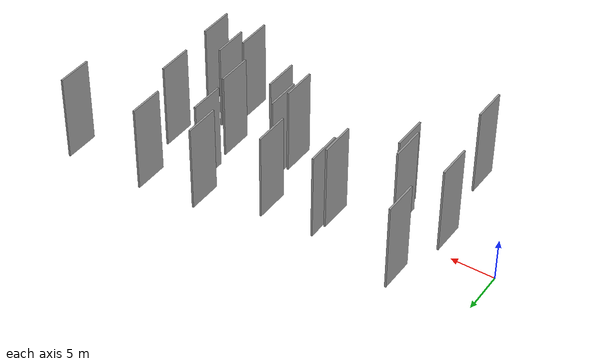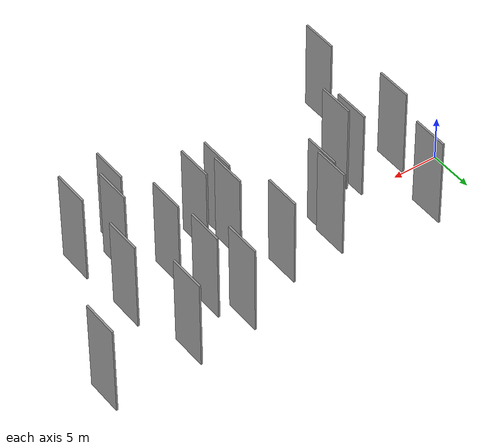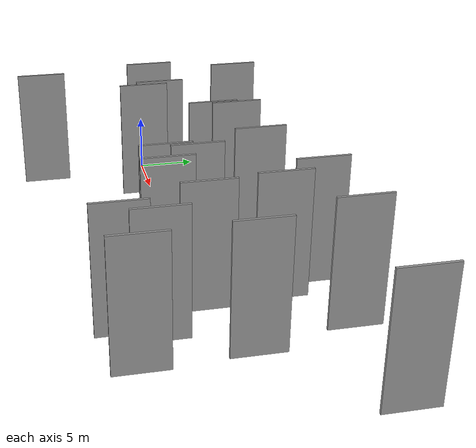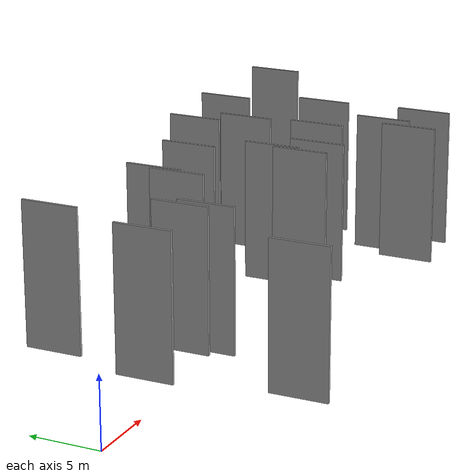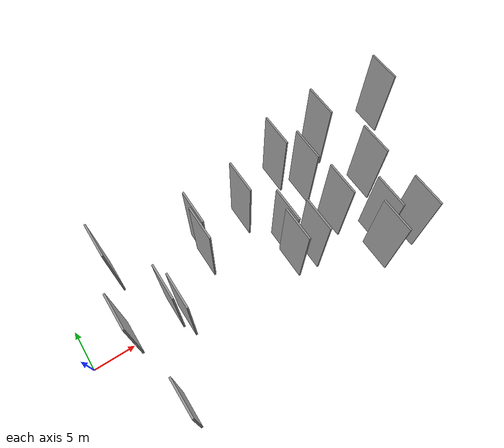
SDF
<sdf version="1.6">
 <world name="default">
  <scene>
   <sky><clouds><speed>12</speed></clouds></sky>
   <ambient>0.4 0.4 0.4 1</ambient>
   <background>0.7 0.7 0.7 1</background>
   <shadows>1</shadows>
  </scene>
  <gravity>0 0 -9.8066</gravity>
  <magnetic_field>6e-06 2.3e-05 -4.2e-05</magnetic_field>
  <physics default="0" name="default_physics" type="ode">
   <ode>
    <solver>
     <type>quick</type>
     <iters>10</iters>
     <sor>1.0</sor>
     <use_dynamic_moi_rescaling>0</use_dynamic_moi_rescaling>
    </solver>
    <constraints>
     <cfm>0</cfm>
     <erp>0.2</erp>
     <contact_max_correcting_vel>100</contact_max_correcting_vel>
     <contact_surface_layer>0.001</contact_surface_layer>
    </constraints>
   </ode>
   <max_step_size>0.004</max_step_size>
   <real_time_factor>1</real_time_factor>
   <real_time_update_rate>250</real_time_update_rate>
  </physics>
  <light name="sun" type="directional">
   <pose>0 0 10 0 0 0</pose>
   <diffuse>0.8 0.8 0.8 1</diffuse>
   <specular>0.2 0.2 0.2 1</specular>
   <attenuation>
    <range>1000</range>
    <constant>0.9</constant>
    <linear>0.01</linear>
    <quadratic>0.001</quadratic>
   </attenuation>
   <direction>-0.5 0.1 -0.9</direction>
  </light>
  <model name="grey_wall_1">
   <static>1</static>
   <pose>7.0667 -9.7520 2.5 0.000000 0.000000 1.570796</pose>
   <link name="link">
    <pose>0 0 5.00 0 0 0</pose>
    <collision name="collision"><geometry><box><size>4.00 0.2 10.00</size></box></geometry></collision>
    <visual name="visual">
     <cast_shadows>0</cast_shadows>
     <geometry><box><size>4.00 0.2 10.00</size></box></geometry>
     <material>
      <script>
       <uri>model://grey_wall/materials/scripts</uri>
       <uri>model://grey_wall/materials/textures</uri>
       <name>vrc/grey_wall</name>
      </script>
     </material>
    </visual>
   </link>
  </model>
  <model name="grey_wall_2">
   <static>1</static>
   <pose>11.3915 -1.3807 2.5 0.000000 0.000000 1.570796</pose>
   <link name="link">
    <pose>0 0 5.00 0 0 0</pose>
    <collision name="collision"><geometry><box><size>4.00 0.2 10.00</size></box></geometry></collision>
    <visual name="visual">
     <cast_shadows>0</cast_shadows>
     <geometry><box><size>4.00 0.2 10.00</size></box></geometry>
     <material>
      <script>
       <uri>model://grey_wall/materials/scripts</uri>
       <uri>model://grey_wall/materials/textures</uri>
       <name>vrc/grey_wall</name>
      </script>
     </material>
    </visual>
   </link>
  </model>
  <model name="grey_wall_3">
   <static>1</static>
   <pose>16.6971 3.4613 2.5 0.000000 0.000000 1.570796</pose>
   <link name="link">
    <pose>0 0 5.00 0 0 0</pose>
    <collision name="collision"><geometry><box><size>4.00 0.2 10.00</size></box></geometry></collision>
    <visual name="visual">
     <cast_shadows>0</cast_shadows>
     <geometry><box><size>4.00 0.2 10.00</size></box></geometry>
     <material>
      <script>
       <uri>model://grey_wall/materials/scripts</uri>
       <uri>model://grey_wall/materials/textures</uri>
       <name>vrc/grey_wall</name>
      </script>
     </material>
    </visual>
   </link>
  </model>
  <model name="grey_wall_4">
   <static>1</static>
   <pose>34.8750 -4.0129 2.5 0.000000 0.000000 1.570796</pose>
   <link name="link">
    <pose>0 0 5.00 0 0 0</pose>
    <collision name="collision"><geometry><box><size>4.00 0.2 10.00</size></box></geometry></collision>
    <visual name="visual">
     <cast_shadows>0</cast_shadows>
     <geometry><box><size>4.00 0.2 10.00</size></box></geometry>
     <material>
      <script>
       <uri>model://grey_wall/materials/scripts</uri>
       <uri>model://grey_wall/materials/textures</uri>
       <name>vrc/grey_wall</name>
      </script>
     </material>
    </visual>
   </link>
  </model>
  <model name="grey_wall_5">
   <static>1</static>
   <pose>38.1381 -5.9291 2.5 0.000000 0.000000 1.570796</pose>
   <link name="link">
    <pose>0 0 5.00 0 0 0</pose>
    <collision name="collision"><geometry><box><size>4.00 0.2 10.00</size></box></geometry></collision>
    <visual name="visual">
     <cast_shadows>0</cast_shadows>
     <geometry><box><size>4.00 0.2 10.00</size></box></geometry>
     <material>
      <script>
       <uri>model://grey_wall/materials/scripts</uri>
       <uri>model://grey_wall/materials/textures</uri>
       <name>vrc/grey_wall</name>
      </script>
     </material>
    </visual>
   </link>
  </model>
  <model name="grey_wall_6">
   <static>1</static>
   <pose>29.3881 8.5571 2.5 0.000000 0.000000 1.570796</pose>
   <link name="link">
    <pose>0 0 5.00 0 0 0</pose>
    <collision name="collision"><geometry><box><size>4.00 0.2 10.00</size></box></geometry></collision>
    <visual name="visual">
     <cast_shadows>0</cast_shadows>
     <geometry><box><size>4.00 0.2 10.00</size></box></geometry>
     <material>
      <script>
       <uri>model://grey_wall/materials/scripts</uri>
       <uri>model://grey_wall/materials/textures</uri>
       <name>vrc/grey_wall</name>
      </script>
     </material>
    </visual>
   </link>
  </model>
  <model name="grey_wall_7">
   <static>1</static>
   <pose>10.6997 0.1087 2.5 0.000000 0.000000 1.570796</pose>
   <link name="link">
    <pose>0 0 5.00 0 0 0</pose>
    <collision name="collision"><geometry><box><size>4.00 0.2 10.00</size></box></geometry></collision>
    <visual name="visual">
     <cast_shadows>0</cast_shadows>
     <geometry><box><size>4.00 0.2 10.00</size></box></geometry>
     <material>
      <script>
       <uri>model://grey_wall/materials/scripts</uri>
       <uri>model://grey_wall/materials/textures</uri>
       <name>vrc/grey_wall</name>
      </script>
     </material>
    </visual>
   </link>
  </model>
  <model name="grey_wall_8">
   <static>1</static>
   <pose>33.5951 -6.4603 2.5 0.000000 0.000000 1.570796</pose>
   <link name="link">
    <pose>0 0 5.00 0 0 0</pose>
    <collision name="collision"><geometry><box><size>4.00 0.2 10.00</size></box></geometry></collision>
    <visual name="visual">
     <cast_shadows>0</cast_shadows>
     <geometry><box><size>4.00 0.2 10.00</size></box></geometry>
     <material>
      <script>
       <uri>model://grey_wall/materials/scripts</uri>
       <uri>model://grey_wall/materials/textures</uri>
       <name>vrc/grey_wall</name>
      </script>
     </material>
    </visual>
   </link>
  </model>
  <model name="grey_wall_9">
   <static>1</static>
   <pose>37.7391 1.8936 2.5 0.000000 0.000000 1.570796</pose>
   <link name="link">
    <pose>0 0 5.00 0 0 0</pose>
    <collision name="collision"><geometry><box><size>4.00 0.2 10.00</size></box></geometry></collision>
    <visual name="visual">
     <cast_shadows>0</cast_shadows>
     <geometry><box><size>4.00 0.2 10.00</size></box></geometry>
     <material>
      <script>
       <uri>model://grey_wall/materials/scripts</uri>
       <uri>model://grey_wall/materials/textures</uri>
       <name>vrc/grey_wall</name>
      </script>
     </material>
    </visual>
   </link>
  </model>
  <model name="grey_wall_10">
   <static>1</static>
   <pose>45.0738 9.3199 2.5 0.000000 0.000000 1.570796</pose>
   <link name="link">
    <pose>0 0 5.00 0 0 0</pose>
    <collision name="collision"><geometry><box><size>4.00 0.2 10.00</size></box></geometry></collision>
    <visual name="visual">
     <cast_shadows>0</cast_shadows>
     <geometry><box><size>4.00 0.2 10.00</size></box></geometry>
     <material>
      <script>
       <uri>model://grey_wall/materials/scripts</uri>
       <uri>model://grey_wall/materials/textures</uri>
       <name>vrc/grey_wall</name>
      </script>
     </material>
    </visual>
   </link>
  </model>
  <model name="grey_wall_11">
   <static>1</static>
   <pose>35.8455 9.1983 2.5 0.000000 0.000000 1.570796</pose>
   <link name="link">
    <pose>0 0 5.00 0 0 0</pose>
    <collision name="collision"><geometry><box><size>4.00 0.2 10.00</size></box></geometry></collision>
    <visual name="visual">
     <cast_shadows>0</cast_shadows>
     <geometry><box><size>4.00 0.2 10.00</size></box></geometry>
     <material>
      <script>
       <uri>model://grey_wall/materials/scripts</uri>
       <uri>model://grey_wall/materials/textures</uri>
       <name>vrc/grey_wall</name>
      </script>
     </material>
    </visual>
   </link>
  </model>
  <model name="grey_wall_12">
   <static>1</static>
   <pose>17.0254 5.3551 2.5 0.000000 0.000000 1.570796</pose>
   <link name="link">
    <pose>0 0 5.00 0 0 0</pose>
    <collision name="collision"><geometry><box><size>4.00 0.2 10.00</size></box></geometry></collision>
    <visual name="visual">
     <cast_shadows>0</cast_shadows>
     <geometry><box><size>4.00 0.2 10.00</size></box></geometry>
     <material>
      <script>
       <uri>model://grey_wall/materials/scripts</uri>
       <uri>model://grey_wall/materials/textures</uri>
       <name>vrc/grey_wall</name>
      </script>
     </material>
    </visual>
   </link>
  </model>
  <model name="grey_wall_13">
   <static>1</static>
   <pose>22.9172 5.7592 2.5 0.000000 0.000000 1.570796</pose>
   <link name="link">
    <pose>0 0 5.00 0 0 0</pose>
    <collision name="collision"><geometry><box><size>4.00 0.2 10.00</size></box></geometry></collision>
    <visual name="visual">
     <cast_shadows>0</cast_shadows>
     <geometry><box><size>4.00 0.2 10.00</size></box></geometry>
     <material>
      <script>
       <uri>model://grey_wall/materials/scripts</uri>
       <uri>model://grey_wall/materials/textures</uri>
       <name>vrc/grey_wall</name>
      </script>
     </material>
    </visual>
   </link>
  </model>
  <model name="grey_wall_14">
   <static>1</static>
   <pose>27.1337 -2.1222 2.5 0.000000 0.000000 1.570796</pose>
   <link name="link">
    <pose>0 0 5.00 0 0 0</pose>
    <collision name="collision"><geometry><box><size>4.00 0.2 10.00</size></box></geometry></collision>
    <visual name="visual">
     <cast_shadows>0</cast_shadows>
     <geometry><box><size>4.00 0.2 10.00</size></box></geometry>
     <material>
      <script>
       <uri>model://grey_wall/materials/scripts</uri>
       <uri>model://grey_wall/materials/textures</uri>
       <name>vrc/grey_wall</name>
      </script>
     </material>
    </visual>
   </link>
  </model>
  <model name="grey_wall_15">
   <static>1</static>
   <pose>5.5983 0.0092 2.5 0.000000 0.000000 1.570796</pose>
   <link name="link">
    <pose>0 0 5.00 0 0 0</pose>
    <collision name="collision"><geometry><box><size>4.00 0.2 10.00</size></box></geometry></collision>
    <visual name="visual">
     <cast_shadows>0</cast_shadows>
     <geometry><box><size>4.00 0.2 10.00</size></box></geometry>
     <material>
      <script>
       <uri>model://grey_wall/materials/scripts</uri>
       <uri>model://grey_wall/materials/textures</uri>
       <name>vrc/grey_wall</name>
      </script>
     </material>
    </visual>
   </link>
  </model>
  <model name="grey_wall_16">
   <static>1</static>
   <pose>25.1741 0.4213 2.5 0.000000 0.000000 1.570796</pose>
   <link name="link">
    <pose>0 0 5.00 0 0 0</pose>
    <collision name="collision"><geometry><box><size>4.00 0.2 10.00</size></box></geometry></collision>
    <visual name="visual">
     <cast_shadows>0</cast_shadows>
     <geometry><box><size>4.00 0.2 10.00</size></box></geometry>
     <material>
      <script>
       <uri>model://grey_wall/materials/scripts</uri>
       <uri>model://grey_wall/materials/textures</uri>
       <name>vrc/grey_wall</name>
      </script>
     </material>
    </visual>
   </link>
  </model>
  <model name="grey_wall_17">
   <static>1</static>
   <pose>24.7703 -1.8641 2.5 0.000000 0.000000 1.570796</pose>
   <link name="link">
    <pose>0 0 5.00 0 0 0</pose>
    <collision name="collision"><geometry><box><size>4.00 0.2 10.00</size></box></geometry></collision>
    <visual name="visual">
     <cast_shadows>0</cast_shadows>
     <geometry><box><size>4.00 0.2 10.00</size></box></geometry>
     <material>
      <script>
       <uri>model://grey_wall/materials/scripts</uri>
       <uri>model://grey_wall/materials/textures</uri>
       <name>vrc/grey_wall</name>
      </script>
     </material>
    </visual>
   </link>
  </model>
  <model name="grey_wall_18">
   <static>1</static>
   <pose>31.1639 5.3011 2.5 0.000000 0.000000 1.570796</pose>
   <link name="link">
    <pose>0 0 5.00 0 0 0</pose>
    <collision name="collision"><geometry><box><size>4.00 0.2 10.00</size></box></geometry></collision>
    <visual name="visual">
     <cast_shadows>0</cast_shadows>
     <geometry><box><size>4.00 0.2 10.00</size></box></geometry>
     <material>
      <script>
       <uri>model://grey_wall/materials/scripts</uri>
       <uri>model://grey_wall/materials/textures</uri>
       <name>vrc/grey_wall</name>
      </script>
     </material>
    </visual>
   </link>
  </model>
  <model name="grey_wall_19">
   <static>1</static>
   <pose>31.6391 -0.1529 2.5 0.000000 0.000000 1.570796</pose>
   <link name="link">
    <pose>0 0 5.00 0 0 0</pose>
    <collision name="collision"><geometry><box><size>4.00 0.2 10.00</size></box></geometry></collision>
    <visual name="visual">
     <cast_shadows>0</cast_shadows>
     <geometry><box><size>4.00 0.2 10.00</size></box></geometry>
     <material>
      <script>
       <uri>model://grey_wall/materials/scripts</uri>
       <uri>model://grey_wall/materials/textures</uri>
       <name>vrc/grey_wall</name>
      </script>
     </material>
    </visual>
   </link>
  </model>
  <model name="grey_wall_20">
   <static>1</static>
   <pose>7.1331 7.4399 2.5 0.000000 0.000000 1.570796</pose>
   <link name="link">
    <pose>0 0 5.00 0 0 0</pose>
    <collision name="collision"><geometry><box><size>4.00 0.2 10.00</size></box></geometry></collision>
    <visual name="visual">
     <cast_shadows>0</cast_shadows>
     <geometry><box><size>4.00 0.2 10.00</size></box></geometry>
     <material>
      <script>
       <uri>model://grey_wall/materials/scripts</uri>
       <uri>model://grey_wall/materials/textures</uri>
       <name>vrc/grey_wall</name>
      </script>
     </material>
    </visual>
   </link>
  </model>
 </world>
</sdf>
